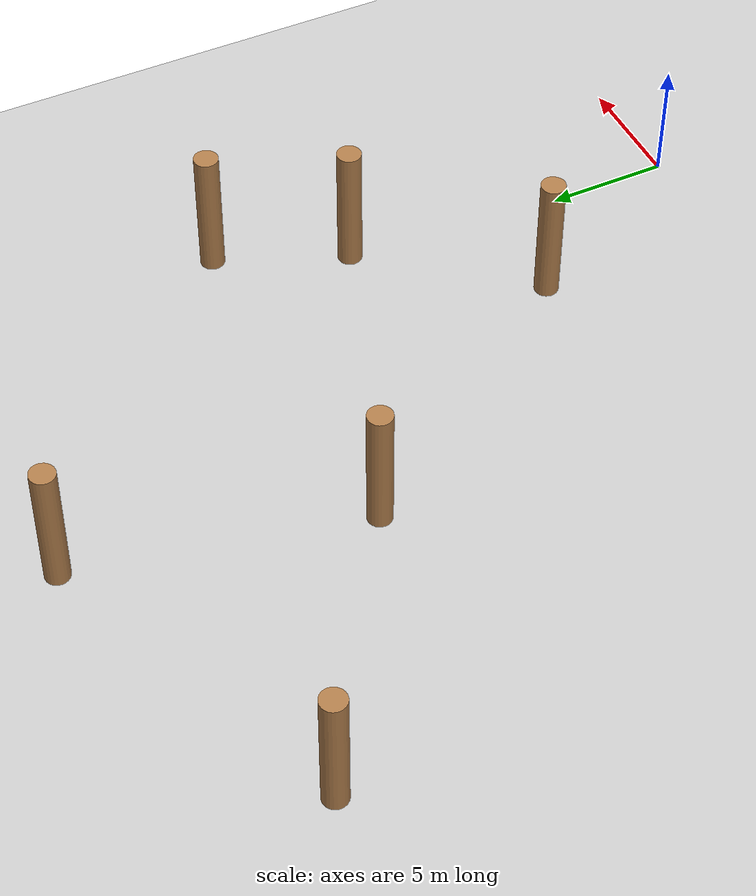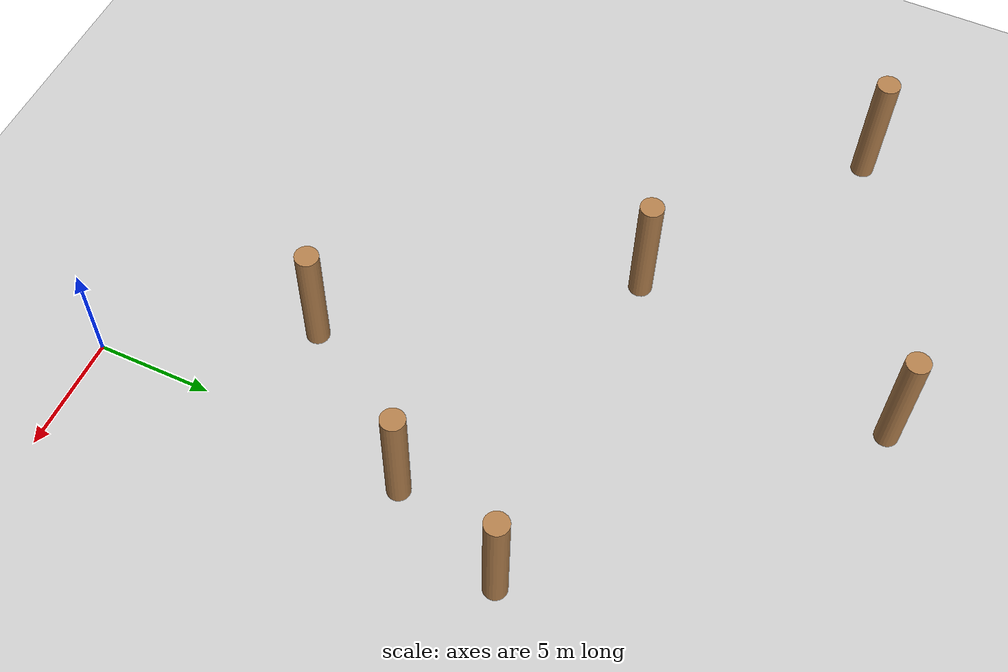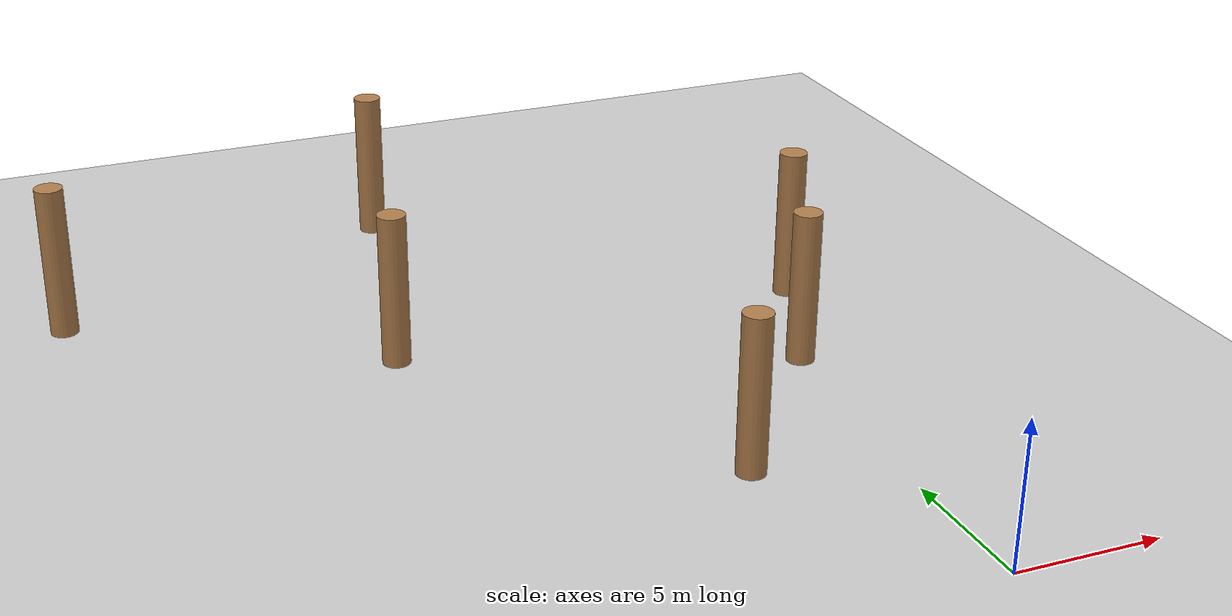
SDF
<sdf version="1.6">
 <world name="default">
  <model name="ground_plane">
   <static>1</static>
   <link name="link">
    <collision name="collision">
     <geometry><plane><normal>0 0 1</normal><size>100 100</size></plane></geometry>
     <surface><friction><ode><mu>100</mu><mu2>50</mu2></ode></friction></surface>
    </collision>
    <visual name="visual">
     <cast_shadows>0</cast_shadows>
     <geometry><plane><normal>0 0 1</normal><size>100 100</size></plane></geometry>
     <material>
      <script><uri>file://media/materials/scripts/gazebo.material</uri><name>Gazebo/Grey</name></script>
     </material>
    </visual>
   </link>
  </model>
  <model name="WoodPillars_6">
   <link name="link_clone_20">
    <inertial>
     <mass>1</mass>
     <inertia><ixx>0.145833</ixx><ixy>0</ixy><ixz>0</ixz><iyy>0.145833</iyy><iyz>0</iyz><izz>0.125</izz></inertia>
    </inertial>
    <pose>-2.64423 -9.12396 -0 0 -0 -0.001289</pose>
    <visual name="visual">
     <geometry><cylinder><radius>0.5</radius><length>5.50507</length></cylinder></geometry>
     <material>
      <script><name>Gazebo/Wood</name><uri>file://media/materials/scripts/gazebo.material</uri></script>
      <shader type="pixel"/>
     </material>
    </visual>
    <collision name="collision">
     <geometry><cylinder><radius>0.5</radius><length>5.50507</length></cylinder></geometry>
     <surface>
      <friction>
       <ode><mu>1</mu><mu2>1</mu2><fdir1>0 0 0</fdir1><slip1>0</slip1><slip2>0</slip2></ode>
       <torsional>
        <coefficient>1</coefficient>
        <patch_radius>0</patch_radius>
        <surface_radius>0</surface_radius>
        <use_patch_radius>1</use_patch_radius>
        <ode><slip>0</slip></ode>
       </torsional>
      </friction>
      <bounce><restitution_coefficient>0</restitution_coefficient><threshold>1e+06</threshold></bounce>
      <contact>
       <collide_without_contact>0</collide_without_contact>
       <collide_without_contact_bitmask>1</collide_without_contact_bitmask>
       <collide_bitmask>1</collide_bitmask>
       <ode>
        <soft_cfm>0</soft_cfm>
        <soft_erp>0.2</soft_erp>
        <kp>1e+13</kp>
        <kd>1</kd>
        <max_vel>0.01</max_vel>
        <min_depth>0</min_depth>
       </ode>
       <bullet>
        <split_impulse>1</split_impulse>
        <split_impulse_penetration_threshold>-0.01</split_impulse_penetration_threshold>
        <soft_cfm>0</soft_cfm>
        <soft_erp>0.2</soft_erp>
        <kp>1e+13</kp>
        <kd>1</kd>
       </bullet>
      </contact>
     </surface>
    </collision>
   </link>
   <link name="link_clone_32">
    <inertial>
     <mass>1</mass>
     <inertia><ixx>0.145833</ixx><ixy>0</ixy><ixz>0</ixz><iyy>0.145833</iyy><iyz>0</iyz><izz>0.125</izz></inertia>
    </inertial>
    <pose>-4.82669 -14.2698 -0 0 -0 -0.001289</pose>
    <visual name="visual">
     <geometry><cylinder><radius>0.5</radius><length>5.50507</length></cylinder></geometry>
     <material>
      <script><name>Gazebo/Wood</name><uri>file://media/materials/scripts/gazebo.material</uri></script>
      <shader type="pixel"/>
     </material>
    </visual>
    <collision name="collision">
     <geometry><cylinder><radius>0.5</radius><length>5.50507</length></cylinder></geometry>
     <surface>
      <friction>
       <ode><mu>1</mu><mu2>1</mu2><fdir1>0 0 0</fdir1><slip1>0</slip1><slip2>0</slip2></ode>
       <torsional>
        <coefficient>1</coefficient>
        <patch_radius>0</patch_radius>
        <surface_radius>0</surface_radius>
        <use_patch_radius>1</use_patch_radius>
        <ode><slip>0</slip></ode>
       </torsional>
      </friction>
      <bounce><restitution_coefficient>0</restitution_coefficient><threshold>1e+06</threshold></bounce>
      <contact>
       <collide_without_contact>0</collide_without_contact>
       <collide_without_contact_bitmask>1</collide_without_contact_bitmask>
       <collide_bitmask>1</collide_bitmask>
       <ode>
        <soft_cfm>0</soft_cfm>
        <soft_erp>0.2</soft_erp>
        <kp>1e+13</kp>
        <kd>1</kd>
        <max_vel>0.01</max_vel>
        <min_depth>0</min_depth>
       </ode>
       <bullet>
        <split_impulse>1</split_impulse>
        <split_impulse_penetration_threshold>-0.01</split_impulse_penetration_threshold>
        <soft_cfm>0</soft_cfm>
        <soft_erp>0.2</soft_erp>
        <kp>1e+13</kp>
        <kd>1</kd>
       </bullet>
      </contact>
     </surface>
    </collision>
   </link>
   <static>0</static>
   <pose>5.51216 28.398 2.75253 0 -0 0.001688</pose>
  </model>
  <model name="WoodPillars_13">
   <link name="link_clone_33">
    <inertial>
     <mass>1</mass>
     <inertia><ixx>0.145833</ixx><ixy>0</ixy><ixz>0</ixz><iyy>0.145833</iyy><iyz>0</iyz><izz>0.125</izz></inertia>
    </inertial>
    <pose>39.6457 18.8804 -3e-06 0 -0 -0.001289</pose>
    <visual name="visual">
     <geometry><cylinder><radius>0.5</radius><length>5.50507</length></cylinder></geometry>
     <material>
      <script><name>Gazebo/Wood</name><uri>file://media/materials/scripts/gazebo.material</uri></script>
      <shader type="pixel"/>
     </material>
    </visual>
    <collision name="collision">
     <geometry><cylinder><radius>0.5</radius><length>5.50507</length></cylinder></geometry>
     <surface>
      <friction>
       <ode><mu>1</mu><mu2>1</mu2><fdir1>0 0 0</fdir1><slip1>0</slip1><slip2>0</slip2></ode>
       <torsional>
        <coefficient>1</coefficient>
        <patch_radius>0</patch_radius>
        <surface_radius>0</surface_radius>
        <use_patch_radius>1</use_patch_radius>
        <ode><slip>0</slip></ode>
       </torsional>
      </friction>
      <bounce><restitution_coefficient>0</restitution_coefficient><threshold>1e+06</threshold></bounce>
      <contact>
       <collide_without_contact>0</collide_without_contact>
       <collide_without_contact_bitmask>1</collide_without_contact_bitmask>
       <collide_bitmask>1</collide_bitmask>
       <ode>
        <soft_cfm>0</soft_cfm>
        <soft_erp>0.2</soft_erp>
        <kp>1e+13</kp>
        <kd>1</kd>
        <max_vel>0.01</max_vel>
        <min_depth>0</min_depth>
       </ode>
       <bullet>
        <split_impulse>1</split_impulse>
        <split_impulse_penetration_threshold>-0.01</split_impulse_penetration_threshold>
        <soft_cfm>0</soft_cfm>
        <soft_erp>0.2</soft_erp>
        <kp>1e+13</kp>
        <kd>1</kd>
       </bullet>
      </contact>
     </surface>
    </collision>
   </link>
   <static>0</static>
   <pose>-43.9989 -11.1335 2.75253 0 -0 0.001424</pose>
  </model>
  <model name="WoodPillar_2">
   <link name="link">
    <inertial>
     <mass>1</mass>
     <inertia><ixx>0.145833</ixx><ixy>0</ixy><ixz>0</ixz><iyy>0.145833</iyy><iyz>0</iyz><izz>0.125</izz></inertia>
    </inertial>
    <visual name="visual">
     <geometry><cylinder><radius>0.5</radius><length>5.50507</length></cylinder></geometry>
     <material>
      <script><name>Gazebo/Wood</name><uri>file://media/materials/scripts/gazebo.material</uri></script>
     </material>
    </visual>
    <collision name="collision">
     <geometry><cylinder><radius>0.5</radius><length>5.50507</length></cylinder></geometry>
     <surface>
      <friction>
       <ode><mu>1</mu><mu2>1</mu2><fdir1>0 0 0</fdir1><slip1>0</slip1><slip2>0</slip2></ode>
       <torsional>
        <coefficient>1</coefficient>
        <patch_radius>0</patch_radius>
        <surface_radius>0</surface_radius>
        <use_patch_radius>1</use_patch_radius>
        <ode><slip>0</slip></ode>
       </torsional>
      </friction>
      <bounce><restitution_coefficient>0</restitution_coefficient><threshold>1e+06</threshold></bounce>
      <contact>
       <collide_without_contact>0</collide_without_contact>
       <collide_without_contact_bitmask>1</collide_without_contact_bitmask>
       <collide_bitmask>1</collide_bitmask>
       <ode>
        <soft_cfm>0</soft_cfm>
        <soft_erp>0.2</soft_erp>
        <kp>1e+13</kp>
        <kd>1</kd>
        <max_vel>0.01</max_vel>
        <min_depth>0</min_depth>
       </ode>
       <bullet>
        <split_impulse>1</split_impulse>
        <split_impulse_penetration_threshold>-0.01</split_impulse_penetration_threshold>
        <soft_cfm>0</soft_cfm>
        <soft_erp>0.2</soft_erp>
        <kp>1e+13</kp>
        <kd>1</kd>
       </bullet>
      </contact>
     </surface>
    </collision>
   </link>
   <static>0</static>
   <pose>-9.71596 30.6869 2.75253 0 -0 0.0013</pose>
  </model>
  <model name="WoodPillar_4">
   <link name="link">
    <inertial>
     <mass>1</mass>
     <inertia><ixx>0.145833</ixx><ixy>0</ixy><ixz>0</ixz><iyy>0.145833</iyy><iyz>0</iyz><izz>0.125</izz></inertia>
    </inertial>
    <visual name="visual">
     <geometry><cylinder><radius>0.5</radius><length>5.50507</length></cylinder></geometry>
     <material>
      <script><name>Gazebo/Wood</name><uri>file://media/materials/scripts/gazebo.material</uri></script>
     </material>
    </visual>
    <collision name="collision">
     <geometry><cylinder><radius>0.5</radius><length>5.50507</length></cylinder></geometry>
     <surface>
      <friction>
       <ode><mu>1</mu><mu2>1</mu2><fdir1>0 0 0</fdir1><slip1>0</slip1><slip2>0</slip2></ode>
       <torsional>
        <coefficient>1</coefficient>
        <patch_radius>0</patch_radius>
        <surface_radius>0</surface_radius>
        <use_patch_radius>1</use_patch_radius>
        <ode><slip>0</slip></ode>
       </torsional>
      </friction>
      <bounce><restitution_coefficient>0</restitution_coefficient><threshold>1e+06</threshold></bounce>
      <contact>
       <collide_without_contact>0</collide_without_contact>
       <collide_without_contact_bitmask>1</collide_without_contact_bitmask>
       <collide_bitmask>1</collide_bitmask>
       <ode>
        <soft_cfm>0</soft_cfm>
        <soft_erp>0.2</soft_erp>
        <kp>1e+13</kp>
        <kd>1</kd>
        <max_vel>0.01</max_vel>
        <min_depth>0</min_depth>
       </ode>
       <bullet>
        <split_impulse>1</split_impulse>
        <split_impulse_penetration_threshold>-0.01</split_impulse_penetration_threshold>
        <soft_cfm>0</soft_cfm>
        <soft_erp>0.2</soft_erp>
        <kp>1e+13</kp>
        <kd>1</kd>
       </bullet>
      </contact>
     </surface>
    </collision>
   </link>
   <static>0</static>
   <pose>-22.591 25.7094 2.75253 0 -0 0.001321</pose>
  </model>
  <model name="WoodPillar_5">
   <link name="link">
    <inertial>
     <mass>1</mass>
     <inertia><ixx>0.145833</ixx><ixy>0</ixy><ixz>0</ixz><iyy>0.145833</iyy><iyz>0</iyz><izz>0.125</izz></inertia>
    </inertial>
    <visual name="visual">
     <geometry><cylinder><radius>0.5</radius><length>5.50507</length></cylinder></geometry>
     <material>
      <script><name>Gazebo/Wood</name><uri>file://media/materials/scripts/gazebo.material</uri></script>
     </material>
    </visual>
    <collision name="collision">
     <geometry><cylinder><radius>0.5</radius><length>5.50507</length></cylinder></geometry>
     <surface>
      <friction>
       <ode><mu>1</mu><mu2>1</mu2><fdir1>0 0 0</fdir1><slip1>0</slip1><slip2>0</slip2></ode>
       <torsional>
        <coefficient>1</coefficient>
        <patch_radius>0</patch_radius>
        <surface_radius>0</surface_radius>
        <use_patch_radius>1</use_patch_radius>
        <ode><slip>0</slip></ode>
       </torsional>
      </friction>
      <bounce><restitution_coefficient>0</restitution_coefficient><threshold>1e+06</threshold></bounce>
      <contact>
       <collide_without_contact>0</collide_without_contact>
       <collide_without_contact_bitmask>1</collide_without_contact_bitmask>
       <collide_bitmask>1</collide_bitmask>
       <ode>
        <soft_cfm>0</soft_cfm>
        <soft_erp>0.2</soft_erp>
        <kp>1e+13</kp>
        <kd>1</kd>
        <max_vel>0.01</max_vel>
        <min_depth>0</min_depth>
       </ode>
       <bullet>
        <split_impulse>1</split_impulse>
        <split_impulse_penetration_threshold>-0.01</split_impulse_penetration_threshold>
        <soft_cfm>0</soft_cfm>
        <soft_erp>0.2</soft_erp>
        <kp>1e+13</kp>
        <kd>1</kd>
       </bullet>
      </contact>
     </surface>
    </collision>
   </link>
   <static>0</static>
   <pose>-12.3104 19.0827 2.75253 0 -0 0.001244</pose>
  </model>
 </world>
</sdf>
